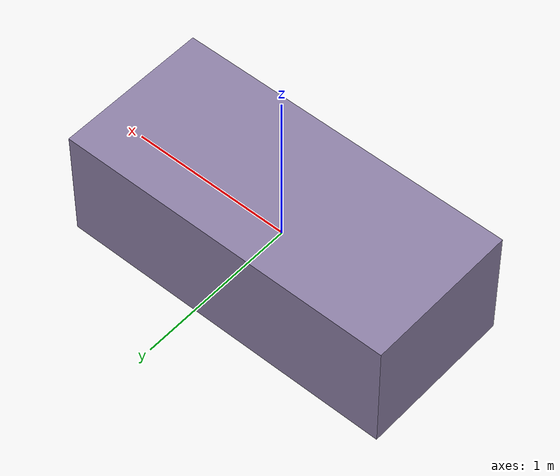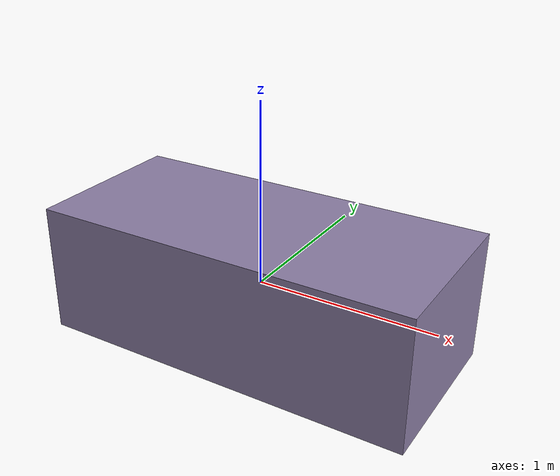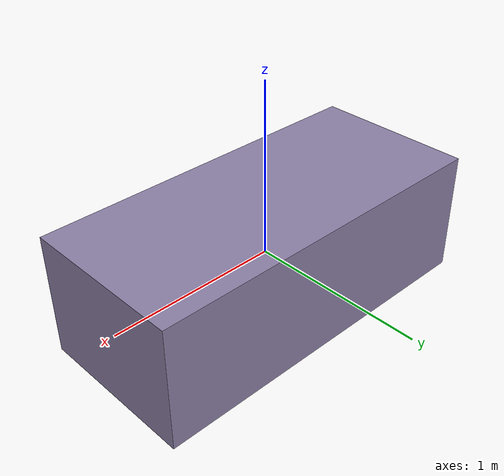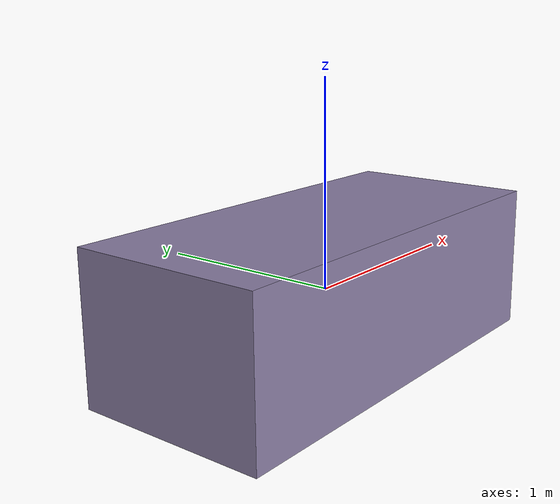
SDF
<?xml version="1.0"?>
<sdf version="1.6">
  <model name="TrolleyBedPatient">
    <static>true</static>
    <link name="link">
      <collision name="col">
        <geometry>
          <box>
            <size>2.1 0.95 0.72</size>
          </box>
        </geometry>
      </collision>
      <visual name="vis">
        <geometry>
          <box>
            <size>2.1 0.95 0.72</size>
          </box>
        </geometry>
        <material>
          <ambient>0.55 0.5 0.65 1</ambient>
          <diffuse>0.55 0.5 0.65 1</diffuse>
        </material>
      </visual>
    </link>
  </model>
</sdf>
